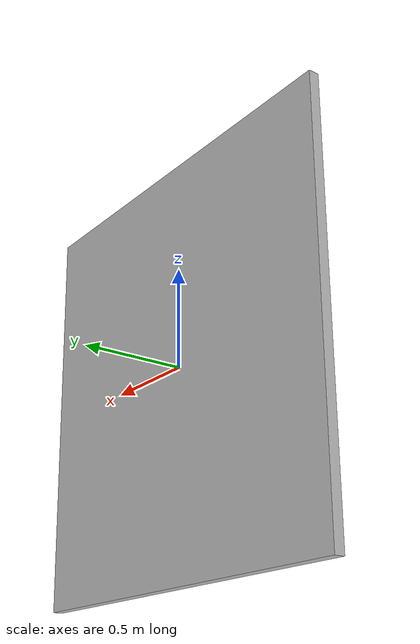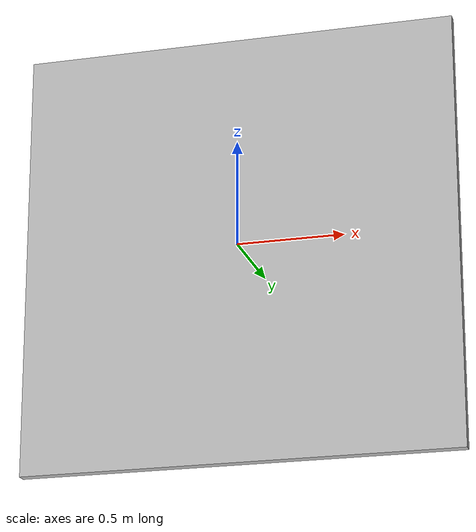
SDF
<?xml version="1.0" encoding="UTF-8"?>
<sdf version='1.9'>
  <model name='helipad'>
    <static>true</static>
    <pose>0 0 0.001 0 0 0</pose>

    <link name="base">
      <visual name="base_visual">
        <geometry>
          <mesh>
            <uri>./helipad.obj</uri>
          </mesh>
        </geometry>
      </visual>
    </link>
  </model>
</sdf>
